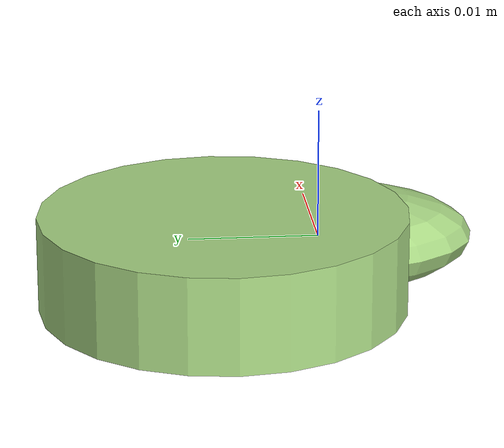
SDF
<?xml version="1.0" ?>
<!-- |    This document was autogenerated by xmacro from data/veggie_template/veggie_base.sdf.xacro  | -->
<!-- |    EDITING THIS FILE BY HAND IS NOT RECOMMENDED                                               | -->
<sdf version="1.8">
	<!-- Parameters -->
	<!-- Base -->
	<!-- Joint 0 -->
	<!-- Link 1 -->
	<!-- Joint 1 -->
	<!-- Link 2 -->
	<!-- Primitives -->
	<!-- All dimensions are half -->
	<!-- Object -->
	<model name="veggie">
		<!-- link0 -->
		<link name="link0">
			<inertial>
				<mass>0.001538920247058042</mass>
				<inertia>
					<ixx>4.7777342372065325e-08</ixx>
					<ixy>0</ixy>
					<ixz>0</ixz>
					<iyy>2.531837510051014e-08</iyy>
					<iyz>0</iyz>
					<izz>6.447690182033272e-08</izz>
				</inertia>
			</inertial>
			<visual name="link0_visual">
				<pose>0 0 0 0 0 0</pose>
				<geometry>
					<ellipsoid>
						<radii>0.008261887893233259 0.011883967285740383 0.0037418445677248778</radii>
					</ellipsoid>
				</geometry>
				<material>
					<ambient>0.659 0.839 0.514 1</ambient>
					<diffuse>0.659 0.839 0.514 1</diffuse>
					<specular>0 0 0 0</specular>
					<emissive>0 0 0 1</emissive>
				</material>
			</visual>
			<collision name="link0_collision">
				<pose>0 0 0 0 0 0 </pose>
				<geometry>
					<ellipsoid>
						<radii>0.008261887893233259 0.011883967285740383 0.0037418445677248778</radii>
					</ellipsoid>
				</geometry>
			</collision>
		</link>
		<!-- link1 -->
		<joint name="joint0" type="fixed">
			<pose relative_to="link0">-0.005888451145129976 0.007778260265093307 0.00046996261513924687 0.0 0.0 0.0</pose>
			<parent>link0</parent>
			<child>link1</child>
		</joint>
		<link name="link1">
			<pose relative_to="joint0">0 0 0 0 0 0</pose>
			<inertial>
				<mass>0.004354053749197809</mass>
				<inertia>
					<ixx>2.2672220174560718e-07</ixx>
					<ixy>0</ixy>
					<ixz>0</ixz>
					<iyy>2.2672220174560718e-07</iyy>
					<iyz>0</iyz>
					<izz>4.151055813783936e-07</izz>
				</inertia>
			</inertial>
			<visual name="link1_visual">
				<pose>0 0 0 0 0 0</pose>
				<geometry>
					<cylinder>
						<radius>0.013808528201926892</radius>
						<length>0.007268555571290861</length>
					</cylinder>
				</geometry>
				<material>
					<ambient>0.659 0.839 0.514 1</ambient>
					<diffuse>0.659 0.839 0.514 1</diffuse>
					<specular>0 0 0 0</specular>
					<emissive>0 0 0 1</emissive>
				</material>
			</visual>
			<collision name="link1_collision">
				<pose>0 0 0 0 0 0 </pose>
				<geometry>
					<cylinder>
						<radius>0.013808528201926892</radius>
						<length>0.007268555571290861</length>
					</cylinder>
				</geometry>
			</collision>
		</link>
		<!-- link2 -->
	</model>
</sdf>
